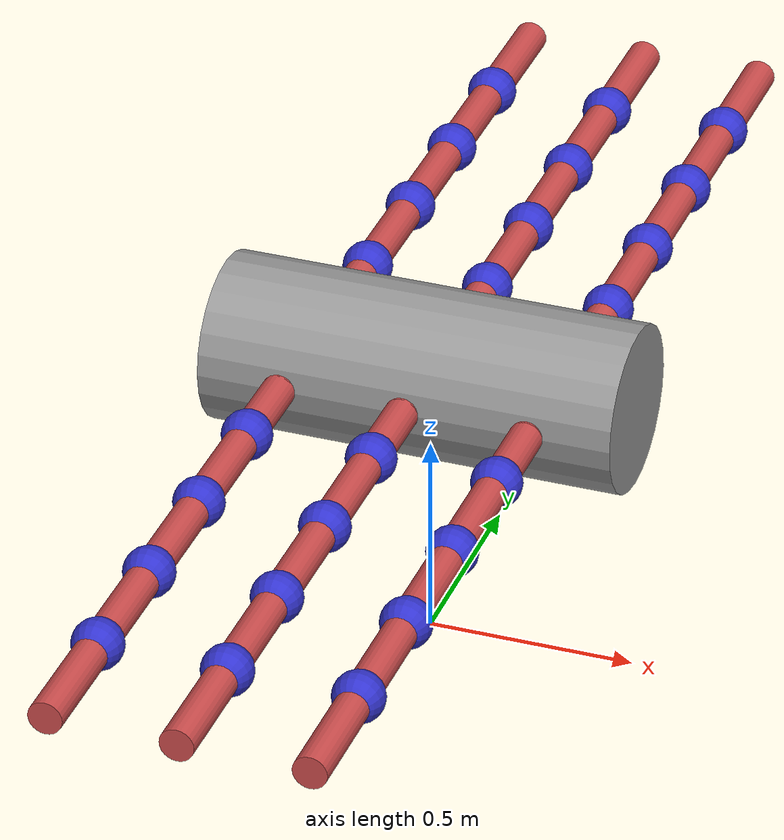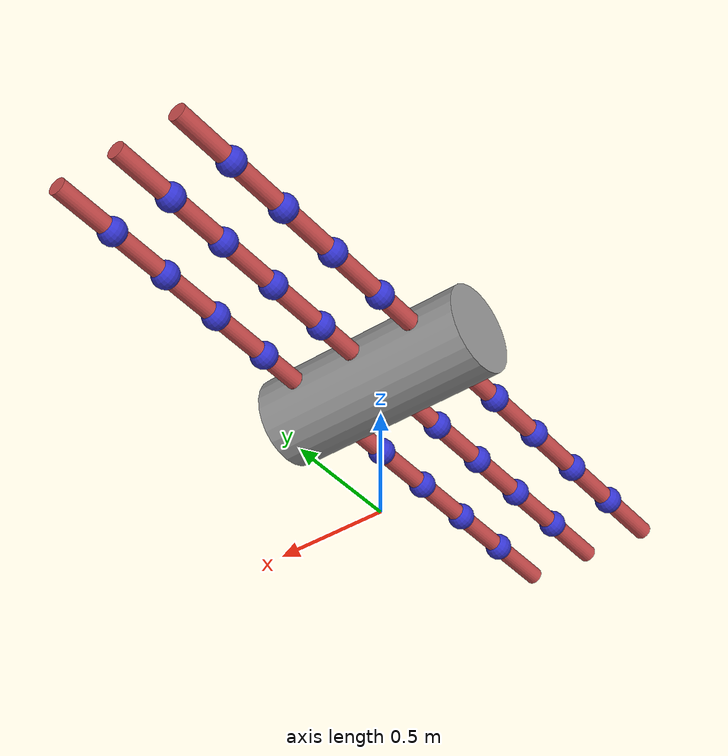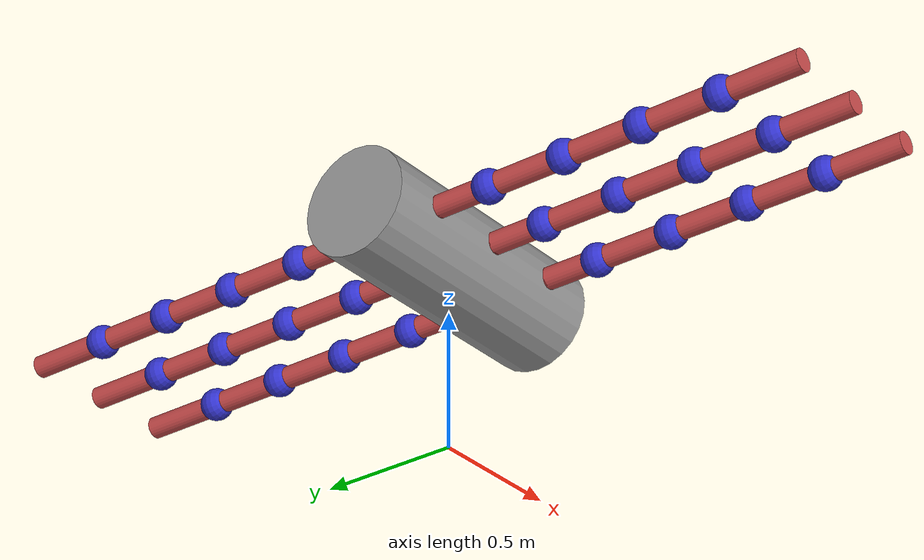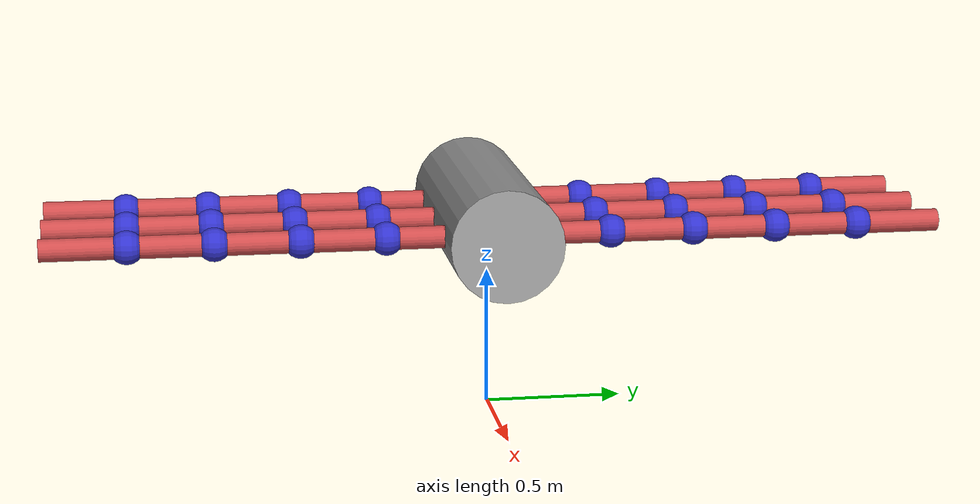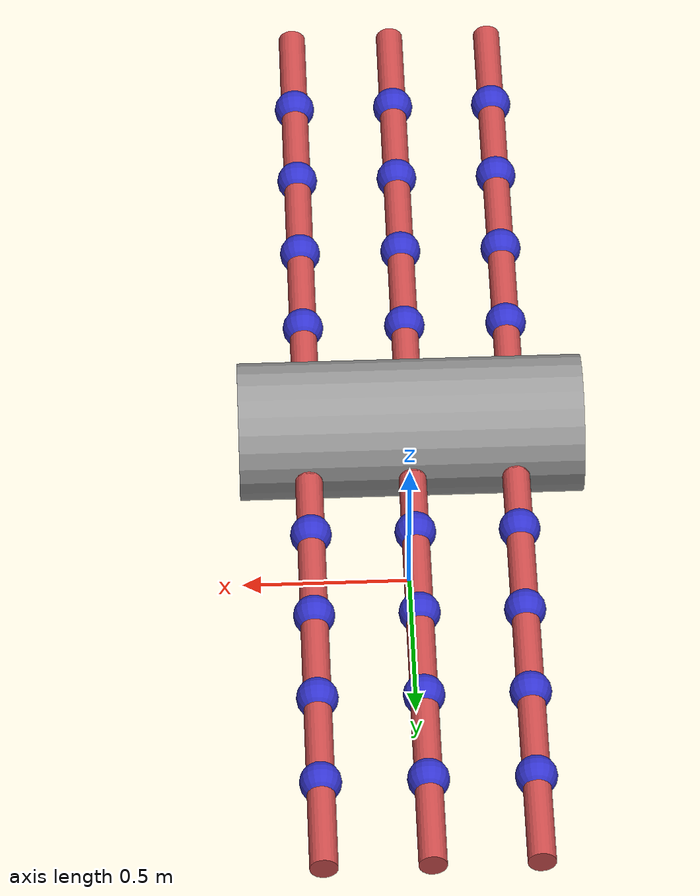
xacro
<?xml version="1.0"?>
<robot xmlns:xacro="http://www.ros.org/wiki/xacro" name="hexapod_arm_bot">

  <!-- Parameters                      -->
  <xacro:property name="body_radius" value="0.2"/>
  <xacro:property name="body_length" value="1.0"/>

  <xacro:property name="arm_cyl_radius" value="0.04"/>
  <xacro:property name="arm_cyl_length" value="0.3"/>
  <xacro:property name="sphere_radius" value="0.06"/>

  <xacro:property name="joint_limit" value="1.57"/>
  <xacro:property name="joint_effort" value="10.0"/>
  <xacro:property name="joint_vel" value="1.0"/>

  <!-- Materials                       -->
  <material name="body_color">
    <color rgba="0.6 0.6 0.6 1.0"/>
  </material>
  <material name="arm_color">
    <color rgba="0.8 0.3 0.3 1.0"/>
  </material>
  <material name="joint_color">
    <color rgba="0.2 0.2 0.8 1.0"/>
  </material>

  <!-- Inertial Macros                 -->
  <xacro:macro name="cylinder_inertia" params="m r h">
    <inertial>
      <mass value="${m}"/>
      <inertia ixx="${m*(3*r*r+h*h)/12}" ixy="0" ixz="0"
               iyy="${m*(3*r*r+h*h)/12}" iyz="0"
               izz="${m*r*r/2}" />
    </inertial>
  </xacro:macro>

  <xacro:macro name="sphere_inertia" params="m r">
    <inertial>
      <mass value="${m}"/>
      <inertia ixx="${2*m*r*r/5}" ixy="0" ixz="0"
               iyy="${2*m*r*r/5}" iyz="0"
               izz="${2*m*r*r/5}" />
    </inertial>
  </xacro:macro>

  <xacro:macro name="dummy_inertia">
    <inertial>
      <mass value="0.01"/>
      <inertia ixx="0.0001" ixy="0" ixz="0" iyy="0.0001" iyz="0" izz="0.0001"/>
    </inertial>
  </xacro:macro>

  <!-- Base Link / Body                -->
  <link name="base_footprint"/>

  <joint name="base_joint" type="fixed">
    <parent link="base_footprint"/>
    <child link="body_link"/>
    <origin xyz="0 0 ${body_radius + 0.5}" rpy="0 ${pi/2} 0"/>
  </joint>

  <link name="body_link">
    <visual>
      <geometry>
        <cylinder radius="${body_radius}" length="${body_length}"/>
      </geometry>
      <material name="body_color"/>
    </visual>
    <collision>
      <geometry>
        <cylinder radius="${body_radius}" length="${body_length}"/>
      </geometry>
    </collision>
    <xacro:cylinder_inertia m="10.0" r="${body_radius}" h="${body_length}"/>
  </link>

  <!-- Gimbal Joint Macro (Sphere visually)           -->
  <!-- 3 DOFs: roll, pitch, yaw                       -->
  <xacro:macro name="gimbal_joint" params="prefix parent child *origin">
    <!-- Roll Link (dummy) -->
    <link name="${prefix}_roll_link">
      <xacro:dummy_inertia/>
    </link>
    <joint name="${prefix}_roll_joint" type="revolute">
      <xacro:insert_block name="origin" />
      <parent link="${parent}"/>
      <child link="${prefix}_roll_link"/>
      <axis xyz="1 0 0"/>
      <limit lower="-${joint_limit}" upper="${joint_limit}" effort="${joint_effort}" velocity="${joint_vel}"/>
    </joint>

    <!-- Pitch Link (dummy) -->
    <link name="${prefix}_pitch_link">
      <xacro:dummy_inertia/>
    </link>
    <joint name="${prefix}_pitch_joint" type="revolute">
      <origin xyz="0 0 0" rpy="0 0 0"/>
      <parent link="${prefix}_roll_link"/>
      <child link="${prefix}_pitch_link"/>
      <axis xyz="0 1 0"/>
      <limit lower="-${joint_limit}" upper="${joint_limit}" effort="${joint_effort}" velocity="${joint_vel}"/>
    </joint>

    <!-- Yaw Link (Visually a Sphere) -->
    <link name="${prefix}_yaw_link">
      <visual>
        <geometry>
          <sphere radius="${sphere_radius}"/>
        </geometry>
        <material name="joint_color"/>
      </visual>
      <collision>
        <geometry>
          <sphere radius="${sphere_radius}"/>
      </geometry>
      </collision>
      <xacro:sphere_inertia m="0.5" r="${sphere_radius}"/>
    </link>
    <joint name="${prefix}_yaw_joint" type="revolute">
      <origin xyz="0 0 0" rpy="0 0 0"/>
      <parent link="${prefix}_pitch_link"/>
      <child link="${prefix}_yaw_link"/>
      <axis xyz="0 0 1"/>
      <limit lower="-${joint_limit}" upper="${joint_limit}" effort="${joint_effort}" velocity="${joint_vel}"/>
    </joint>

    <!-- Connection to the next cylinder -->
    <!-- The next cylinder starts exactly at the center of the sphere, so the child link's cylinder visual should have an offset of arm_cyl_length/2 -->
    <joint name="${prefix}_fixed_joint" type="fixed">
      <origin xyz="0 0 0" rpy="0 0 0"/>
      <parent link="${prefix}_yaw_link"/>
      <child link="${child}"/>
    </joint>
  </xacro:macro>

  <!-- Arm Macro                                      -->
  <xacro:macro name="arm" params="prefix parent *origin">

    <!-- Cylinder 1 -->
    <link name="${prefix}_cyl1">
      <visual>
        <origin xyz="0 0 ${arm_cyl_length/2}" rpy="0 0 0"/>
        <geometry>
          <cylinder radius="${arm_cyl_radius}" length="${arm_cyl_length}"/>
        </geometry>
        <material name="arm_color"/>
      </visual>
      <collision>
        <origin xyz="0 0 ${arm_cyl_length/2}" rpy="0 0 0"/>
        <geometry>
          <cylinder radius="${arm_cyl_radius}" length="${arm_cyl_length}"/>
        </geometry>
      </collision>
      <xacro:cylinder_inertia m="0.5" r="${arm_cyl_radius}" h="${arm_cyl_length}"/>
    </link>

    <joint name="${prefix}_base_joint" type="fixed">
      <xacro:insert_block name="origin" />
      <parent link="${parent}"/>
      <child link="${prefix}_cyl1"/>
    </joint>

    <!-- Cylinder 2 via Gimbal 1 -->
    <link name="${prefix}_cyl2">
      <visual>
        <origin xyz="0 0 ${arm_cyl_length/2}" rpy="0 0 0"/>
        <geometry>
          <cylinder radius="${arm_cyl_radius}" length="${arm_cyl_length}"/>
        </geometry>
        <material name="arm_color"/>
      </visual>
      <collision>
        <origin xyz="0 0 ${arm_cyl_length/2}" rpy="0 0 0"/>
        <geometry>
          <cylinder radius="${arm_cyl_radius}" length="${arm_cyl_length}"/>
        </geometry>
      </collision>
      <xacro:cylinder_inertia m="0.5" r="${arm_cyl_radius}" h="${arm_cyl_length}"/>
    </link>
    <xacro:gimbal_joint prefix="${prefix}_g1" parent="${prefix}_cyl1" child="${prefix}_cyl2">
      <!-- Attached at the end of cylinder 1 -->
      <origin xyz="0 0 ${arm_cyl_length}" rpy="0 0 0"/>
    </xacro:gimbal_joint>

    <!-- Cylinder 3 via Gimbal 2 -->
    <link name="${prefix}_cyl3">
      <visual>
        <origin xyz="0 0 ${arm_cyl_length/2}" rpy="0 0 0"/>
        <geometry>
          <cylinder radius="${arm_cyl_radius}" length="${arm_cyl_length}"/>
        </geometry>
        <material name="arm_color"/>
      </visual>
      <collision>
        <origin xyz="0 0 ${arm_cyl_length/2}" rpy="0 0 0"/>
        <geometry>
          <cylinder radius="${arm_cyl_radius}" length="${arm_cyl_length}"/>
        </geometry>
      </collision>
      <xacro:cylinder_inertia m="0.5" r="${arm_cyl_radius}" h="${arm_cyl_length}"/>
    </link>
    <xacro:gimbal_joint prefix="${prefix}_g2" parent="${prefix}_cyl2" child="${prefix}_cyl3">
      <origin xyz="0 0 ${arm_cyl_length}" rpy="0 0 0"/>
    </xacro:gimbal_joint>

    <!-- Cylinder 4 via Gimbal 3 -->
    <link name="${prefix}_cyl4">
      <visual>
        <origin xyz="0 0 ${arm_cyl_length/2}" rpy="0 0 0"/>
        <geometry>
          <cylinder radius="${arm_cyl_radius}" length="${arm_cyl_length}"/>
        </geometry>
        <material name="arm_color"/>
      </visual>
      <collision>
        <origin xyz="0 0 ${arm_cyl_length/2}" rpy="0 0 0"/>
        <geometry>
          <cylinder radius="${arm_cyl_radius}" length="${arm_cyl_length}"/>
        </geometry>
      </collision>
      <xacro:cylinder_inertia m="0.5" r="${arm_cyl_radius}" h="${arm_cyl_length}"/>
    </link>
    <xacro:gimbal_joint prefix="${prefix}_g3" parent="${prefix}_cyl3" child="${prefix}_cyl4">
      <origin xyz="0 0 ${arm_cyl_length}" rpy="0 0 0"/>
    </xacro:gimbal_joint>

    <!-- Cylinder 5 via Gimbal 4 -->
    <link name="${prefix}_cyl5">
      <visual>
        <origin xyz="0 0 ${arm_cyl_length/2}" rpy="0 0 0"/>
        <geometry>
          <cylinder radius="${arm_cyl_radius}" length="${arm_cyl_length}"/>
        </geometry>
        <material name="arm_color"/>
      </visual>
      <collision>
        <origin xyz="0 0 ${arm_cyl_length/2}" rpy="0 0 0"/>
        <geometry>
          <cylinder radius="${arm_cyl_radius}" length="${arm_cyl_length}"/>
        </geometry>
      </collision>
      <xacro:cylinder_inertia m="0.5" r="${arm_cyl_radius}" h="${arm_cyl_length}"/>
    </link>
    <xacro:gimbal_joint prefix="${prefix}_g4" parent="${prefix}_cyl4" child="${prefix}_cyl5">
      <origin xyz="0 0 ${arm_cyl_length}" rpy="0 0 0"/>
    </xacro:gimbal_joint>

    <!-- Cylinder 6 via Gimbal 5 -->
    <link name="${prefix}_cyl6">
      <visual>
        <origin xyz="0 0 ${arm_cyl_length/2}" rpy="0 0 0"/>
        <geometry>
          <cylinder radius="${arm_cyl_radius}" length="${arm_cyl_length}"/>
        </geometry>
        <material name="arm_color"/>
      </visual>
      <collision>
        <origin xyz="0 0 ${arm_cyl_length/2}" rpy="0 0 0"/>
        <geometry>
          <cylinder radius="${arm_cyl_radius}" length="${arm_cyl_length}"/>
        </geometry>
      </collision>
      <xacro:cylinder_inertia m="0.5" r="${arm_cyl_radius}" h="${arm_cyl_length}"/>
    </link>
    <xacro:gimbal_joint prefix="${prefix}_g5" parent="${prefix}_cyl5" child="${prefix}_cyl6">
      <origin xyz="0 0 ${arm_cyl_length}" rpy="0 0 0"/>
    </xacro:gimbal_joint>

  </xacro:macro>

  <!-- Attach 6 Arms                                  -->

  <!-- Left Arms (pointing +Y in global, or just set rpy suitably) -->
  <xacro:arm prefix="arm_L1" parent="body_link">
    <!-- Body Z is global X. Body Y is global Y. Body X is global -Z. -->
    <origin xyz="0 ${body_radius} -0.3" rpy="${pi/2} 0 0"/>
  </xacro:arm>
  <xacro:arm prefix="arm_L2" parent="body_link">
    <origin xyz="0 ${body_radius} 0" rpy="${pi/2} 0 0"/>
  </xacro:arm>
  <xacro:arm prefix="arm_L3" parent="body_link">
    <origin xyz="0 ${body_radius} 0.3" rpy="${pi/2} 0 0"/>
  </xacro:arm>

  <!-- Right Arms (pointing -Y in global) -->
  <xacro:arm prefix="arm_R1" parent="body_link">
    <origin xyz="0 -${body_radius} -0.3" rpy="-${pi/2} 0 0"/>
  </xacro:arm>
  <xacro:arm prefix="arm_R2" parent="body_link">
    <origin xyz="0 -${body_radius} 0" rpy="-${pi/2} 0 0"/>
  </xacro:arm>
  <xacro:arm prefix="arm_R3" parent="body_link">
    <origin xyz="0 -${body_radius} 0.3" rpy="-${pi/2} 0 0"/>
  </xacro:arm>

  <!-- ros2_control includes -->
  <xacro:include filename="hexapod.ros2_control.xacro" />
  <xacro:hexapod_ros2_control name="GazeboSystem" />

</robot>
